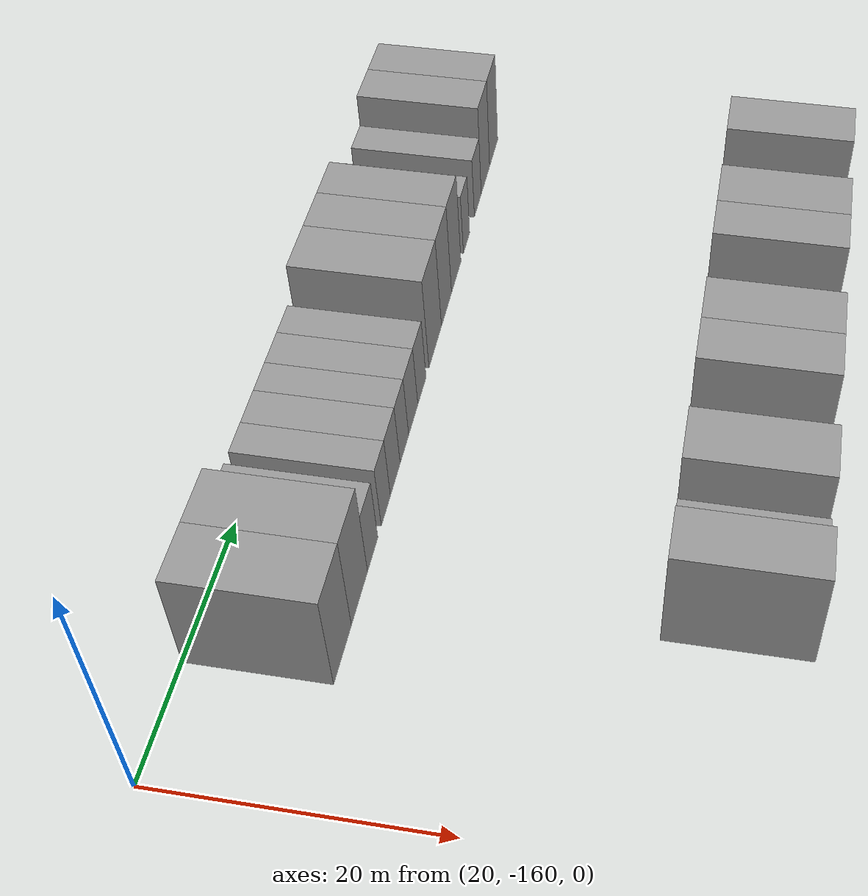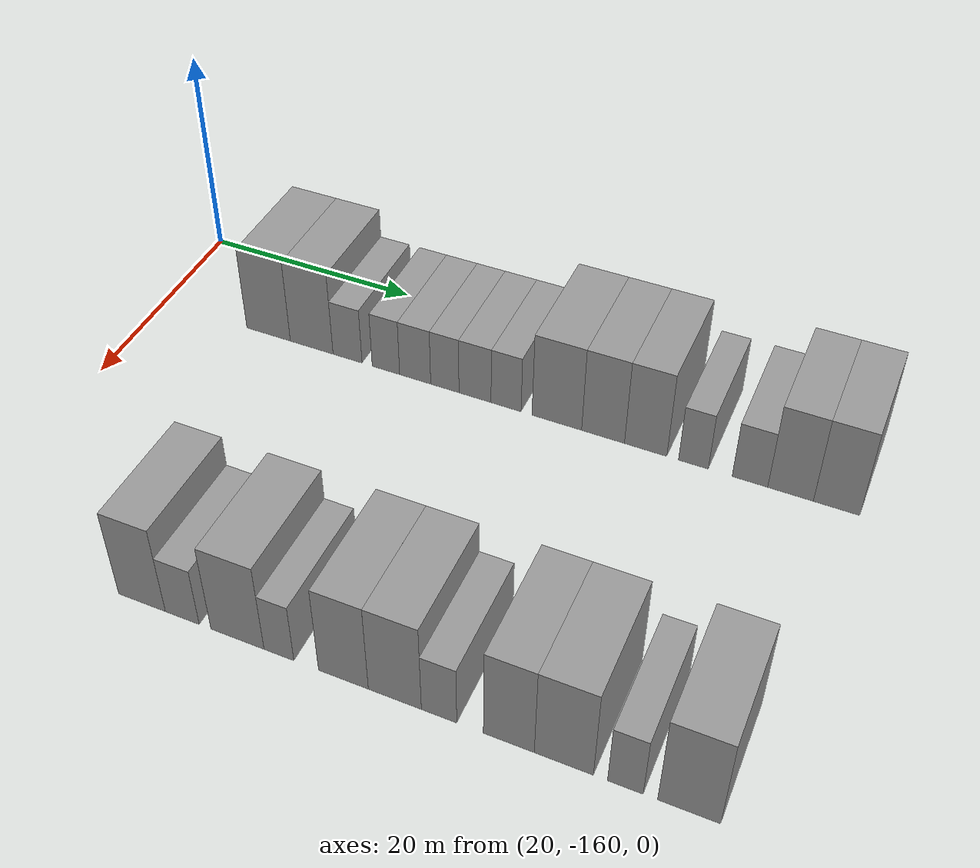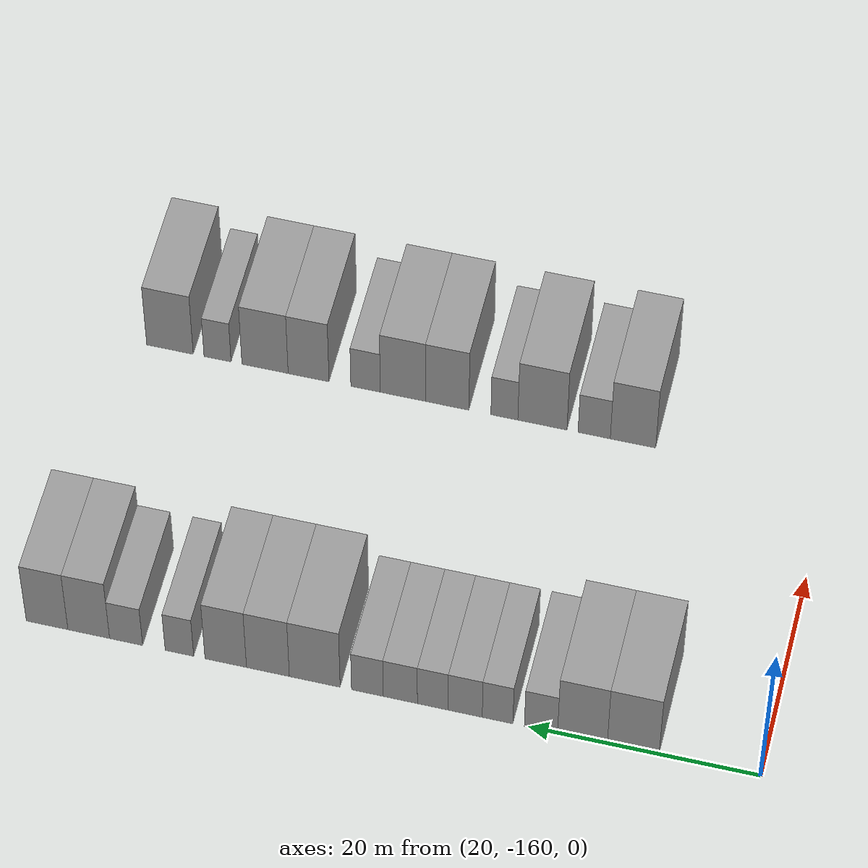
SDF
<sdf version="1.6">
 <world name="default">
  <model name="building_17">
   <static>1</static>
   <pose>25.0000 -149.0126 0 0.000000 0.000000 0.000000</pose>
   <link name="link">
    <pose>0 0 4.50 0 0 0</pose>
    <collision name="collision"><geometry><box><size>10.0000 4.4693 9.0000</size></box></geometry></collision>
    <visual name="visual">
     <cast_shadows>0</cast_shadows>
     <geometry><box><size>10.0000 4.4693 9.0000</size></box></geometry>
     <material>
      <script>
       <uri>model://grey_wall/materials/scripts</uri>
       <uri>model://grey_wall/materials/textures</uri>
       <name>vrc/grey_wall</name>
      </script>
     </material>
    </visual>
   </link>
  </model>
  <model name="building_18">
   <static>1</static>
   <pose>25.0000 -144.6236 0 0.000000 0.000000 0.000000</pose>
   <link name="link">
    <pose>0 0 4.50 0 0 0</pose>
    <collision name="collision"><geometry><box><size>10.0000 4.3088 9.0000</size></box></geometry></collision>
    <visual name="visual">
     <cast_shadows>0</cast_shadows>
     <geometry><box><size>10.0000 4.3088 9.0000</size></box></geometry>
     <material>
      <script>
       <uri>model://grey_wall/materials/scripts</uri>
       <uri>model://grey_wall/materials/textures</uri>
       <name>vrc/grey_wall</name>
      </script>
     </material>
    </visual>
   </link>
  </model>
  <model name="building_19">
   <static>1</static>
   <pose>25.0000 -141.0324 0 0.000000 0.000000 0.000000</pose>
   <link name="link">
    <pose>0 0 3.00 0 0 0</pose>
    <collision name="collision"><geometry><box><size>10.0000 2.8735 6.0000</size></box></geometry></collision>
    <visual name="visual">
     <cast_shadows>0</cast_shadows>
     <geometry><box><size>10.0000 2.8735 6.0000</size></box></geometry>
     <material>
      <script>
       <uri>model://grey_wall/materials/scripts</uri>
       <uri>model://grey_wall/materials/textures</uri>
       <name>vrc/grey_wall</name>
      </script>
     </material>
    </visual>
   </link>
  </model>
  <model name="building_20">
   <static>1</static>
   <pose>25.0000 -137.2617 0 0.000000 0.000000 0.000000</pose>
   <link name="link">
    <pose>0 0 3.00 0 0 0</pose>
    <collision name="collision"><geometry><box><size>10.0000 2.6680 6.0000</size></box></geometry></collision>
    <visual name="visual">
     <cast_shadows>0</cast_shadows>
     <geometry><box><size>10.0000 2.6680 6.0000</size></box></geometry>
     <material>
      <script>
       <uri>model://grey_wall/materials/scripts</uri>
       <uri>model://grey_wall/materials/textures</uri>
       <name>vrc/grey_wall</name>
      </script>
     </material>
    </visual>
   </link>
  </model>
  <model name="building_21">
   <static>1</static>
   <pose>25.0000 -134.4380 0 0.000000 0.000000 0.000000</pose>
   <link name="link">
    <pose>0 0 3.00 0 0 0</pose>
    <collision name="collision"><geometry><box><size>10.0000 2.9795 6.0000</size></box></geometry></collision>
    <visual name="visual">
     <cast_shadows>0</cast_shadows>
     <geometry><box><size>10.0000 2.9795 6.0000</size></box></geometry>
     <material>
      <script>
       <uri>model://grey_wall/materials/scripts</uri>
       <uri>model://grey_wall/materials/textures</uri>
       <name>vrc/grey_wall</name>
      </script>
     </material>
    </visual>
   </link>
  </model>
  <model name="building_22">
   <static>1</static>
   <pose>25.0000 -131.6081 0 0.000000 0.000000 0.000000</pose>
   <link name="link">
    <pose>0 0 3.00 0 0 0</pose>
    <collision name="collision"><geometry><box><size>10.0000 2.6803 6.0000</size></box></geometry></collision>
    <visual name="visual">
     <cast_shadows>0</cast_shadows>
     <geometry><box><size>10.0000 2.6803 6.0000</size></box></geometry>
     <material>
      <script>
       <uri>model://grey_wall/materials/scripts</uri>
       <uri>model://grey_wall/materials/textures</uri>
       <name>vrc/grey_wall</name>
      </script>
     </material>
    </visual>
   </link>
  </model>
  <model name="building_23">
   <static>1</static>
   <pose>25.0000 -128.7739 0 0.000000 0.000000 0.000000</pose>
   <link name="link">
    <pose>0 0 3.00 0 0 0</pose>
    <collision name="collision"><geometry><box><size>10.0000 2.9879 6.0000</size></box></geometry></collision>
    <visual name="visual">
     <cast_shadows>0</cast_shadows>
     <geometry><box><size>10.0000 2.9879 6.0000</size></box></geometry>
     <material>
      <script>
       <uri>model://grey_wall/materials/scripts</uri>
       <uri>model://grey_wall/materials/textures</uri>
       <name>vrc/grey_wall</name>
      </script>
     </material>
    </visual>
   </link>
  </model>
  <model name="building_24">
   <static>1</static>
   <pose>25.0000 -125.8931 0 0.000000 0.000000 0.000000</pose>
   <link name="link">
    <pose>0 0 3.00 0 0 0</pose>
    <collision name="collision"><geometry><box><size>10.0000 2.7739 6.0000</size></box></geometry></collision>
    <visual name="visual">
     <cast_shadows>0</cast_shadows>
     <geometry><box><size>10.0000 2.7739 6.0000</size></box></geometry>
     <material>
      <script>
       <uri>model://grey_wall/materials/scripts</uri>
       <uri>model://grey_wall/materials/textures</uri>
       <name>vrc/grey_wall</name>
      </script>
     </material>
    </visual>
   </link>
  </model>
  <model name="building_25">
   <static>1</static>
   <pose>25.0000 -121.2723 0 0.000000 0.000000 0.000000</pose>
   <link name="link">
    <pose>0 0 4.50 0 0 0</pose>
    <collision name="collision"><geometry><box><size>10.0000 4.4677 9.0000</size></box></geometry></collision>
    <visual name="visual">
     <cast_shadows>0</cast_shadows>
     <geometry><box><size>10.0000 4.4677 9.0000</size></box></geometry>
     <material>
      <script>
       <uri>model://grey_wall/materials/scripts</uri>
       <uri>model://grey_wall/materials/textures</uri>
       <name>vrc/grey_wall</name>
      </script>
     </material>
    </visual>
   </link>
  </model>
  <model name="building_26">
   <static>1</static>
   <pose>25.0000 -117.1486 0 0.000000 0.000000 0.000000</pose>
   <link name="link">
    <pose>0 0 4.50 0 0 0</pose>
    <collision name="collision"><geometry><box><size>10.0000 3.7798 9.0000</size></box></geometry></collision>
    <visual name="visual">
     <cast_shadows>0</cast_shadows>
     <geometry><box><size>10.0000 3.7798 9.0000</size></box></geometry>
     <material>
      <script>
       <uri>model://grey_wall/materials/scripts</uri>
       <uri>model://grey_wall/materials/textures</uri>
       <name>vrc/grey_wall</name>
      </script>
     </material>
    </visual>
   </link>
  </model>
  <model name="building_27">
   <static>1</static>
   <pose>25.0000 -113.4258 0 0.000000 0.000000 0.000000</pose>
   <link name="link">
    <pose>0 0 4.50 0 0 0</pose>
    <collision name="collision"><geometry><box><size>10.0000 3.6658 9.0000</size></box></geometry></collision>
    <visual name="visual">
     <cast_shadows>0</cast_shadows>
     <geometry><box><size>10.0000 3.6658 9.0000</size></box></geometry>
     <material>
      <script>
       <uri>model://grey_wall/materials/scripts</uri>
       <uri>model://grey_wall/materials/textures</uri>
       <name>vrc/grey_wall</name>
      </script>
     </material>
    </visual>
   </link>
  </model>
  <model name="building_28">
   <static>1</static>
   <pose>25.0000 -109.3301 0 0.000000 0.000000 0.000000</pose>
   <link name="link">
    <pose>0 0 3.00 0 0 0</pose>
    <collision name="collision"><geometry><box><size>10.0000 2.5256 6.0000</size></box></geometry></collision>
    <visual name="visual">
     <cast_shadows>0</cast_shadows>
     <geometry><box><size>10.0000 2.5256 6.0000</size></box></geometry>
     <material>
      <script>
       <uri>model://grey_wall/materials/scripts</uri>
       <uri>model://grey_wall/materials/textures</uri>
       <name>vrc/grey_wall</name>
      </script>
     </material>
    </visual>
   </link>
  </model>
  <model name="building_29">
   <static>1</static>
   <pose>25.0000 -104.5966 0 0.000000 0.000000 0.000000</pose>
   <link name="link">
    <pose>0 0 3.00 0 0 0</pose>
    <collision name="collision"><geometry><box><size>10.0000 2.9414 6.0000</size></box></geometry></collision>
    <visual name="visual">
     <cast_shadows>0</cast_shadows>
     <geometry><box><size>10.0000 2.9414 6.0000</size></box></geometry>
     <material>
      <script>
       <uri>model://grey_wall/materials/scripts</uri>
       <uri>model://grey_wall/materials/textures</uri>
       <name>vrc/grey_wall</name>
      </script>
     </material>
    </visual>
   </link>
  </model>
  <model name="building_30">
   <static>1</static>
   <pose>25.0000 -101.2687 0 0.000000 0.000000 0.000000</pose>
   <link name="link">
    <pose>0 0 4.50 0 0 0</pose>
    <collision name="collision"><geometry><box><size>10.0000 3.7144 9.0000</size></box></geometry></collision>
    <visual name="visual">
     <cast_shadows>0</cast_shadows>
     <geometry><box><size>10.0000 3.7144 9.0000</size></box></geometry>
     <material>
      <script>
       <uri>model://grey_wall/materials/scripts</uri>
       <uri>model://grey_wall/materials/textures</uri>
       <name>vrc/grey_wall</name>
      </script>
     </material>
    </visual>
   </link>
  </model>
  <model name="building_31">
   <static>1</static>
   <pose>25.0000 -97.5562 0 0.000000 0.000000 0.000000</pose>
   <link name="link">
    <pose>0 0 4.50 0 0 0</pose>
    <collision name="collision"><geometry><box><size>10.0000 3.7105 9.0000</size></box></geometry></collision>
    <visual name="visual">
     <cast_shadows>0</cast_shadows>
     <geometry><box><size>10.0000 3.7105 9.0000</size></box></geometry>
     <material>
      <script>
       <uri>model://grey_wall/materials/scripts</uri>
       <uri>model://grey_wall/materials/textures</uri>
       <name>vrc/grey_wall</name>
      </script>
     </material>
    </visual>
   </link>
  </model>
  <model name="building_119">
   <static>1</static>
   <pose>55.0000 -142.5205 0 0.000000 0.000000 0.000000</pose>
   <link name="link">
    <pose>0 0 4.50 0 0 0</pose>
    <collision name="collision"><geometry><box><size>10.0000 4.0932 9.0000</size></box></geometry></collision>
    <visual name="visual">
     <cast_shadows>0</cast_shadows>
     <geometry><box><size>10.0000 4.0932 9.0000</size></box></geometry>
     <material>
      <script>
       <uri>model://grey_wall/materials/scripts</uri>
       <uri>model://grey_wall/materials/textures</uri>
       <name>vrc/grey_wall</name>
      </script>
     </material>
    </visual>
   </link>
  </model>
  <model name="building_120">
   <static>1</static>
   <pose>55.0000 -139.0189 0 0.000000 0.000000 0.000000</pose>
   <link name="link">
    <pose>0 0 3.00 0 0 0</pose>
    <collision name="collision"><geometry><box><size>10.0000 2.9101 6.0000</size></box></geometry></collision>
    <visual name="visual">
     <cast_shadows>0</cast_shadows>
     <geometry><box><size>10.0000 2.9101 6.0000</size></box></geometry>
     <material>
      <script>
       <uri>model://grey_wall/materials/scripts</uri>
       <uri>model://grey_wall/materials/textures</uri>
       <name>vrc/grey_wall</name>
      </script>
     </material>
    </visual>
   </link>
  </model>
  <model name="building_121">
   <static>1</static>
   <pose>55.0000 -134.3386 0 0.000000 0.000000 0.000000</pose>
   <link name="link">
    <pose>0 0 4.50 0 0 0</pose>
    <collision name="collision"><geometry><box><size>10.0000 4.4504 9.0000</size></box></geometry></collision>
    <visual name="visual">
     <cast_shadows>0</cast_shadows>
     <geometry><box><size>10.0000 4.4504 9.0000</size></box></geometry>
     <material>
      <script>
       <uri>model://grey_wall/materials/scripts</uri>
       <uri>model://grey_wall/materials/textures</uri>
       <name>vrc/grey_wall</name>
      </script>
     </material>
    </visual>
   </link>
  </model>
  <model name="building_122">
   <static>1</static>
   <pose>55.0000 -130.8919 0 0.000000 0.000000 0.000000</pose>
   <link name="link">
    <pose>0 0 3.00 0 0 0</pose>
    <collision name="collision"><geometry><box><size>10.0000 2.4430 6.0000</size></box></geometry></collision>
    <visual name="visual">
     <cast_shadows>0</cast_shadows>
     <geometry><box><size>10.0000 2.4430 6.0000</size></box></geometry>
     <material>
      <script>
       <uri>model://grey_wall/materials/scripts</uri>
       <uri>model://grey_wall/materials/textures</uri>
       <name>vrc/grey_wall</name>
      </script>
     </material>
    </visual>
   </link>
  </model>
  <model name="building_123">
   <static>1</static>
   <pose>55.0000 -125.6906 0 0.000000 0.000000 0.000000</pose>
   <link name="link">
    <pose>0 0 4.50 0 0 0</pose>
    <collision name="collision"><geometry><box><size>10.0000 3.9597 9.0000</size></box></geometry></collision>
    <visual name="visual">
     <cast_shadows>0</cast_shadows>
     <geometry><box><size>10.0000 3.9597 9.0000</size></box></geometry>
     <material>
      <script>
       <uri>model://grey_wall/materials/scripts</uri>
       <uri>model://grey_wall/materials/textures</uri>
       <name>vrc/grey_wall</name>
      </script>
     </material>
    </visual>
   </link>
  </model>
  <model name="building_124">
   <static>1</static>
   <pose>55.0000 -121.6492 0 0.000000 0.000000 0.000000</pose>
   <link name="link">
    <pose>0 0 4.50 0 0 0</pose>
    <collision name="collision"><geometry><box><size>10.0000 4.1230 9.0000</size></box></geometry></collision>
    <visual name="visual">
     <cast_shadows>0</cast_shadows>
     <geometry><box><size>10.0000 4.1230 9.0000</size></box></geometry>
     <material>
      <script>
       <uri>model://grey_wall/materials/scripts</uri>
       <uri>model://grey_wall/materials/textures</uri>
       <name>vrc/grey_wall</name>
      </script>
     </material>
    </visual>
   </link>
  </model>
  <model name="building_125">
   <static>1</static>
   <pose>55.0000 -118.2426 0 0.000000 0.000000 0.000000</pose>
   <link name="link">
    <pose>0 0 3.00 0 0 0</pose>
    <collision name="collision"><geometry><box><size>10.0000 2.6902 6.0000</size></box></geometry></collision>
    <visual name="visual">
     <cast_shadows>0</cast_shadows>
     <geometry><box><size>10.0000 2.6902 6.0000</size></box></geometry>
     <material>
      <script>
       <uri>model://grey_wall/materials/scripts</uri>
       <uri>model://grey_wall/materials/textures</uri>
       <name>vrc/grey_wall</name>
      </script>
     </material>
    </visual>
   </link>
  </model>
  <model name="building_126">
   <static>1</static>
   <pose>55.0000 -113.0211 0 0.000000 0.000000 0.000000</pose>
   <link name="link">
    <pose>0 0 4.50 0 0 0</pose>
    <collision name="collision"><geometry><box><size>10.0000 3.7529 9.0000</size></box></geometry></collision>
    <visual name="visual">
     <cast_shadows>0</cast_shadows>
     <geometry><box><size>10.0000 3.7529 9.0000</size></box></geometry>
     <material>
      <script>
       <uri>model://grey_wall/materials/scripts</uri>
       <uri>model://grey_wall/materials/textures</uri>
       <name>vrc/grey_wall</name>
      </script>
     </material>
    </visual>
   </link>
  </model>
  <model name="building_127">
   <static>1</static>
   <pose>55.0000 -109.0175 0 0.000000 0.000000 0.000000</pose>
   <link name="link">
    <pose>0 0 4.50 0 0 0</pose>
    <collision name="collision"><geometry><box><size>10.0000 4.2543 9.0000</size></box></geometry></collision>
    <visual name="visual">
     <cast_shadows>0</cast_shadows>
     <geometry><box><size>10.0000 4.2543 9.0000</size></box></geometry>
     <material>
      <script>
       <uri>model://grey_wall/materials/scripts</uri>
       <uri>model://grey_wall/materials/textures</uri>
       <name>vrc/grey_wall</name>
      </script>
     </material>
    </visual>
   </link>
  </model>
  <model name="building_128">
   <static>1</static>
   <pose>55.0000 -104.6437 0 0.000000 0.000000 0.000000</pose>
   <link name="link">
    <pose>0 0 3.00 0 0 0</pose>
    <collision name="collision"><geometry><box><size>10.0000 2.4934 6.0000</size></box></geometry></collision>
    <visual name="visual">
     <cast_shadows>0</cast_shadows>
     <geometry><box><size>10.0000 2.4934 6.0000</size></box></geometry>
     <material>
      <script>
       <uri>model://grey_wall/materials/scripts</uri>
       <uri>model://grey_wall/materials/textures</uri>
       <name>vrc/grey_wall</name>
      </script>
     </material>
    </visual>
   </link>
  </model>
  <model name="building_129">
   <static>1</static>
   <pose>55.0000 -100.2473 0 0.000000 0.000000 0.000000</pose>
   <link name="link">
    <pose>0 0 4.50 0 0 0</pose>
    <collision name="collision"><geometry><box><size>10.0000 4.2994 9.0000</size></box></geometry></collision>
    <visual name="visual">
     <cast_shadows>0</cast_shadows>
     <geometry><box><size>10.0000 4.2994 9.0000</size></box></geometry>
     <material>
      <script>
       <uri>model://grey_wall/materials/scripts</uri>
       <uri>model://grey_wall/materials/textures</uri>
       <name>vrc/grey_wall</name>
      </script>
     </material>
    </visual>
   </link>
  </model>
 </world>
</sdf>
